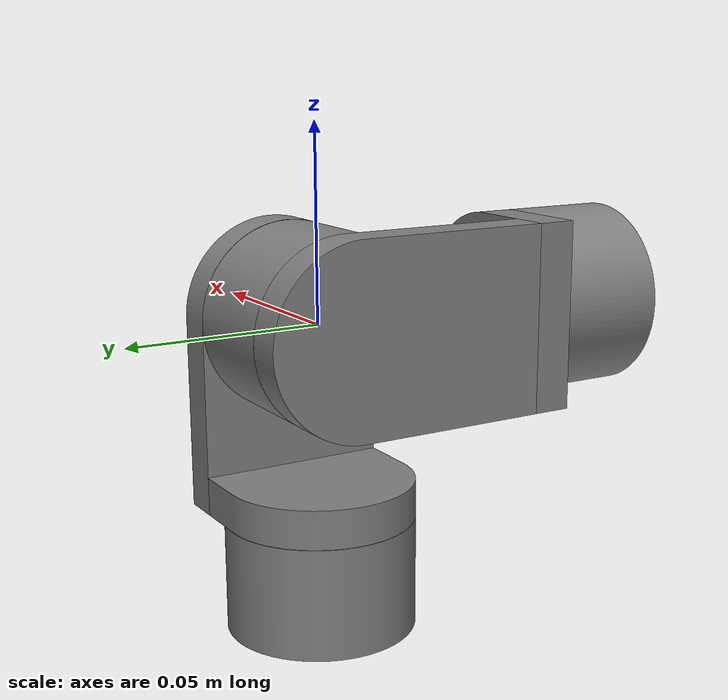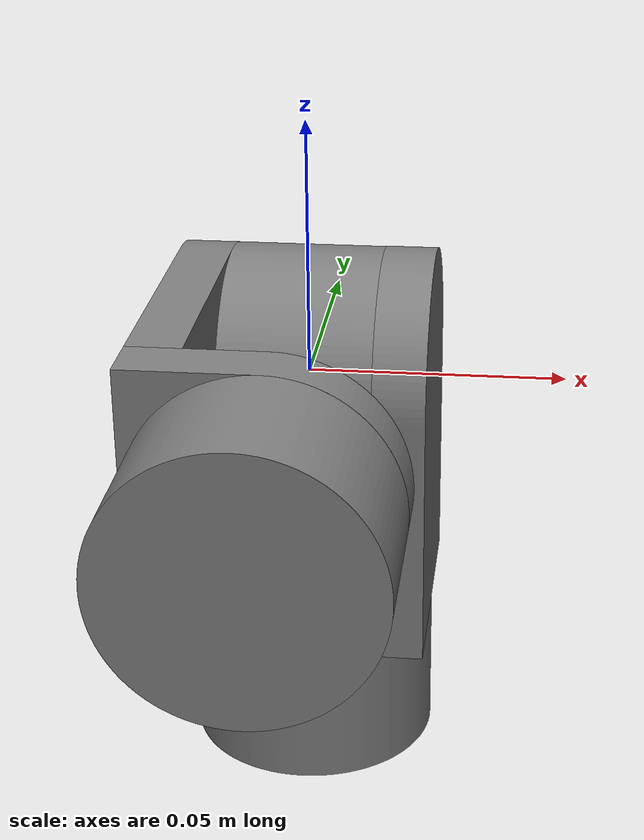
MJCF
<mujoco model="Gimbal">
  <option gravity="0 0 -9.81">
      <flag contact="disable"/>
  </option>
  <actuator>
    <position name="JPitch" joint="JPitch" kp="1" dampratio="1" ctrlrange="-3.14 3.14"/>
    <position name="JYaw" joint="JYaw" kp="5" dampratio="1" ctrlrange="-3.14 3.14"/>
  </actuator>
  <compiler angle="radian" eulerseq="xyz"/>

  <asset>
    <mesh name="base_link" file="base_link.stl" scale="0.001 0.001 0.001"/>
    <mesh name="Pitched1" file="Pitched1.stl" scale="0.001 0.001 0.001"/>
    <mesh name="pr11" file="pr11.stl" scale="0.001 0.001 0.001"/>
    <mesh name="pr21" file="pr21.stl" scale="0.001 0.001 0.001"/>
    <mesh name="PitchRowed1" file="PitchRowed1.stl" scale="0.001 0.001 0.001"/>
    <mesh name="motor1" file="motor1.stl" scale="0.001 0.001 0.001"/>
    <mesh name="p11" file="p11.stl" scale="0.001 0.001 0.001"/>
  </asset>

  <worldbody>
    <geom type="mesh" mesh="base_link" pos="0 0 -0.079" euler="0 0 0" />
    <body name="Pitched1" pos="0 0 -0.05" euler="0 0 0" >
      <inertial pos="0.00584961 0 0.0380315" quat="0.999962 0 -0.00866268 0" mass="0.825419" diaginertia="0.000517819 0.000501819 0.000256549"/>
      <joint name="JPitch" pos="0 0 0" axis="0 0 1"/>
      <geom name="g_p" pos="0 0 -0.0289" quat="1 0 0 0" type="mesh" mesh="Pitched1"/>
      <geom pos="0 0 -0.0289" type="mesh" mesh="p11"/>
      <geom pos="0 0 -0.029" type="mesh" mesh="motor1"/>
      <body name="pr11" pos="-0.0145 0 0.05">
        <inertial pos="0.0080426 -0.0524081 0" quat="0.699108 0.699108 0.10606 0.10606" mass="0.863884" diaginertia="0.000925479 0.0008836 0.000246062"/>
        <joint name="JYaw" pos="0 0 0" axis="-1 0 0"/>
        <geom name="g_pr11" pos="0.0145 0 -0.079" quat="1 0 0 0" type="mesh" mesh="pr11"/>
        <geom pos="0.0145 0 -0.079" quat="1 0 0 0" type="mesh" mesh="pr21"/>
        <geom pos="0.0145 0 -0.079" quat="1 0 0 0" type="mesh" mesh="PitchRowed1"/>
        <body name="l_endeffector" pos="0 -0.1 0" euler="0 0 0" />
      </body>
    </body>
  </worldbody>
  <contact>
    <pair geom1="g_p" geom2="g_pr11" />
  </contact>
</mujoco>
